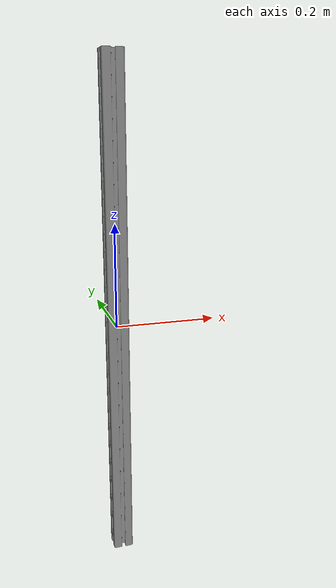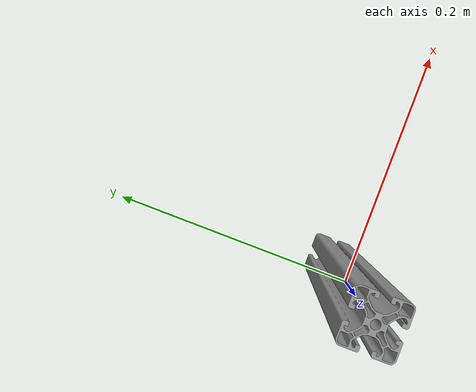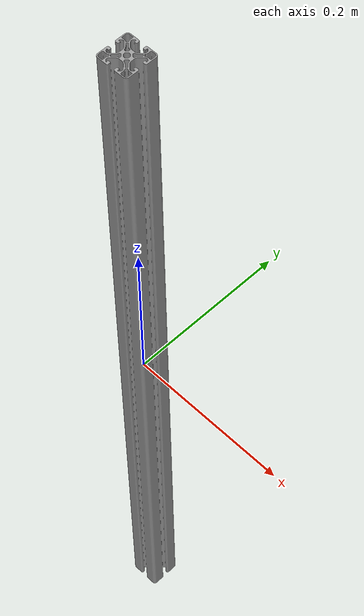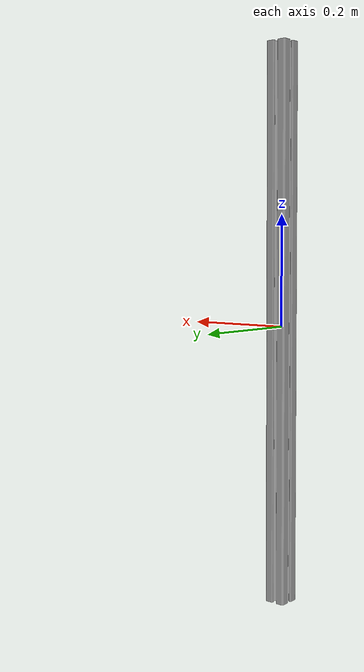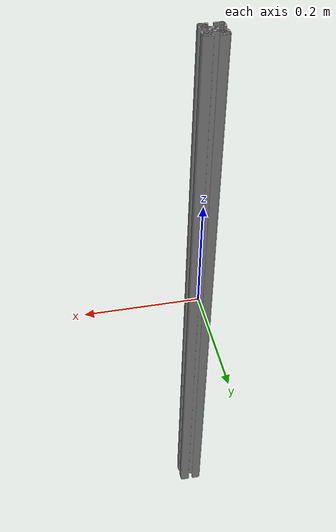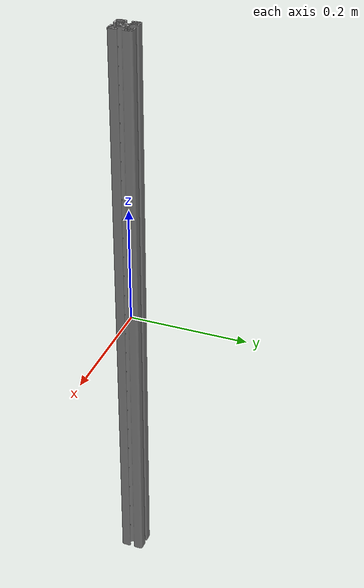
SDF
<?xml version='1.0'?>
<sdf version='1.7'>
  <model name='cooperative_simualtion_object'>
    <link name='link_1'>
      <inertial>
        <mass>0.001</mass>
        <inertia>
          <ixx>0.000834667</ixx>
          <ixy>0</ixy>
          <ixz>0</ixz>
          <iyy>0.000834667</iyy>
          <iyz>0</iyz>
          <izz>0.00000026667</izz>
        </inertia>
        <pose>0 0 0 0 -0 0</pose>
      </inertial>
      <pose>0 0 0 0 -0 0</pose>
      <gravity>1</gravity>
      <self_collide>0</self_collide>
      <kinematic>0</kinematic>
      <enable_wind>0</enable_wind>
      <visual name='visual'>
        <pose>0 0 0 0 -0 0</pose>
        <geometry>
          <mesh>
            <uri>/home/alexander/Studium/Masterarbeit/Masterarbeit_ws/src/Cooperative_Manipulation_Directroy/cooperative_manipulation_simulation/model/visual/ItemProfile_1m.dae</uri>
            <scale>1 1 1</scale>
          </mesh>
        </geometry>
        <material>
          <lighting>1</lighting>
          <script>
            <uri>file://media/materials/scripts/gazebo.material</uri>
            <name>Gazebo/Grey</name>
          </script>
          <shader type='pixel'>
            <normal_map>__default__</normal_map>
          </shader>
          <ambient>0.3 0.3 0.3 1</ambient>
          <diffuse>0.7 0.7 0.7 1</diffuse>
          <specular>0.01 0.01 0.01 1</specular>
          <emissive>0 0 0 1</emissive>
        </material>
        <transparency>0</transparency>
        <cast_shadows>1</cast_shadows>
      </visual>
      <collision name='collision'>
        <laser_retro>0</laser_retro>
        <max_contacts>100</max_contacts>
        <pose>0 0 0 0 -0 0</pose>
        <geometry>
          <box>
            <size>0.04 0.04 1</size>
          </box>
        </geometry>
        <surface>
          <friction>
            <ode>
              <mu>1e+06</mu>
              <mu2>1e+06</mu2>
              <fdir1>0 0 0</fdir1>
              <slip1>0</slip1>
              <slip2>0</slip2>
            </ode>
            <torsional>
              <coefficient>1e+06</coefficient>
              <patch_radius>0</patch_radius>
              <surface_radius>0</surface_radius>
              <use_patch_radius>1</use_patch_radius>
              <ode>
                <slip>0</slip>
              </ode>
            </torsional>
          </friction>
          <bounce>
            <restitution_coefficient>0</restitution_coefficient>
            <threshold>1e+06</threshold>
          </bounce>
          <contact>
            <collide_without_contact>0</collide_without_contact>
            <collide_without_contact_bitmask>1</collide_without_contact_bitmask>
            <collide_bitmask>1</collide_bitmask>
            <ode>
              <soft_cfm>0</soft_cfm>
              <soft_erp>0.2</soft_erp>
              <kp>1e+13</kp>
              <kd>1e+13</kd>
              <max_vel>0.01</max_vel>
              <min_depth>0</min_depth>
            </ode>
            <bullet>
              <split_impulse>1</split_impulse>
              <split_impulse_penetration_threshold>-0.01</split_impulse_penetration_threshold>
              <soft_cfm>0</soft_cfm>
              <soft_erp>0.2</soft_erp>
              <kp>1e+13</kp>
              <kd>1e+13</kd>
            </bullet>
          </contact>
        </surface>
      </collision>
    </link>
    <static>0</static>
    <allow_auto_disable>1</allow_auto_disable>
  </model>
</sdf>
